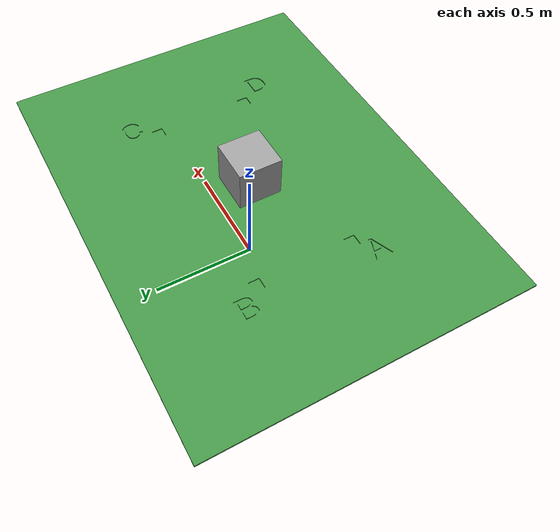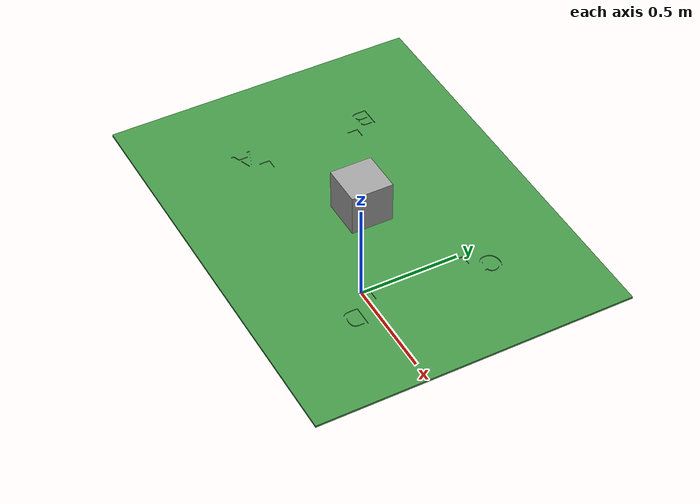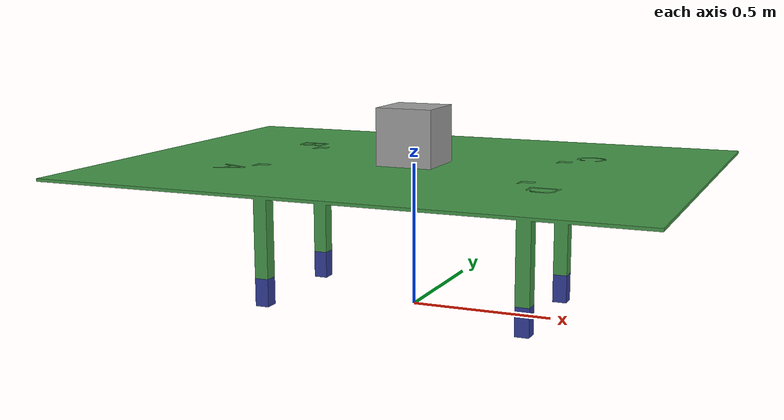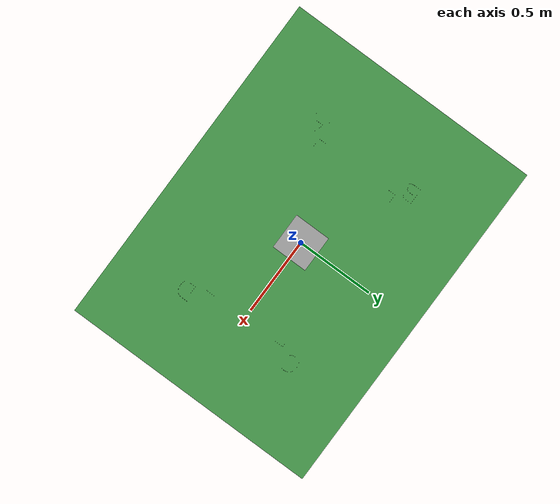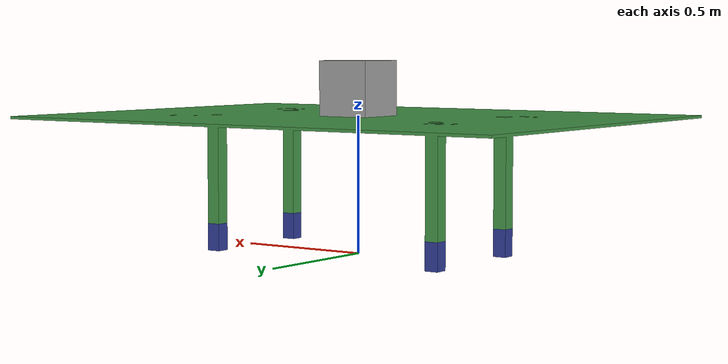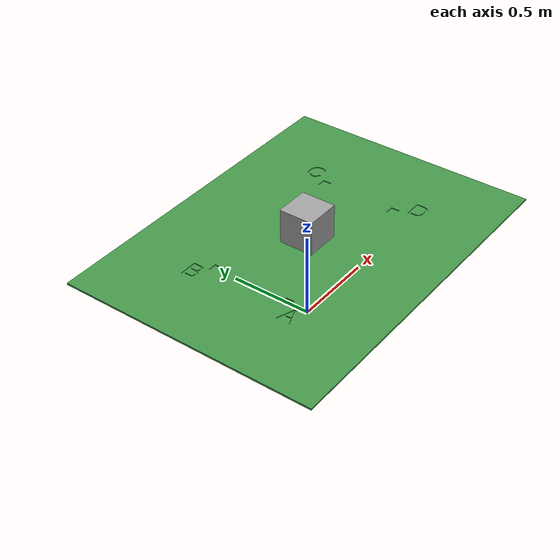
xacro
<?xml version="1.0" ?>
<robot name="loadcell_sim" xmlns:xacro="http://www.ros.org/wiki/xacro">

<xacro:include filename="$(find loadcell_sim_description)/urdf/materials.xacro" />
<xacro:include filename="$(find loadcell_sim_description)/urdf/loadcell_sim.trans" />
<xacro:include filename="$(find loadcell_sim_description)/urdf/loadcell_sim.gazebo" />
<link name="base_link">
  <inertial>
    <origin xyz="4.103019280728379e-05 -1.802265709957231e-05 0.4719023221708341" rpy="0 0 0"/>
    <mass value="265.191721150617"/>
    <inertia ixx="47.111072" iyy="86.63584" izz="130.800671" ixy="-0.013041" iyz="0.000124" ixz="-0.000278"/>
  </inertial>
  <visual>
    <origin xyz="0 0 0" rpy="0 0 0"/>
    <geometry>
      <mesh filename="package://loadcell_sim_description/meshes/base_link.stl" scale="0.001 0.001 0.001"/>
    </geometry>
    <material name="powder_coat_rough_green"/>
  </visual>
  <collision>
    <origin xyz="0 0 0" rpy="0 0 0"/>
    <geometry>
      <mesh filename="package://loadcell_sim_description/meshes/base_link.stl" scale="0.001 0.001 0.001"/>
    </geometry>
  </collision>
</link>

<link name="load_cell_A_1">
  <inertial>
    <origin xyz="0.0 1.1102230246251565e-16 -0.05000000000000002" rpy="0 0 0"/>
    <mass value="1.9624999999999946"/>
    <inertia ixx="0.002044" iyy="0.002044" izz="0.000818" ixy="0.0" iyz="0.0" ixz="0.0"/>
  </inertial>
  <visual>
    <origin xyz="0.475 0.225 -0.1" rpy="0 0 0"/>
    <geometry>
      <mesh filename="package://loadcell_sim_description/meshes/load_cell_A_1.stl" scale="0.001 0.001 0.001"/>
    </geometry>
    <material name="powder_coat_rough_blue"/>
  </visual>
  <collision>
    <origin xyz="0.475 0.225 -0.1" rpy="0 0 0"/>
    <geometry>
      <mesh filename="package://loadcell_sim_description/meshes/load_cell_A_1.stl" scale="0.001 0.001 0.001"/>
    </geometry>
  </collision>
</link>

<link name="load_cell_B_1">
  <inertial>
    <origin xyz="0.0 0.0 -0.05" rpy="0 0 0"/>
    <mass value="1.9625"/>
    <inertia ixx="0.002044" iyy="0.002044" izz="0.000818" ixy="0.0" iyz="0.0" ixz="-0.0"/>
  </inertial>
  <visual>
    <origin xyz="0.475 -0.225 -0.1" rpy="0 0 0"/>
    <geometry>
      <mesh filename="package://loadcell_sim_description/meshes/load_cell_B_1.stl" scale="0.001 0.001 0.001"/>
    </geometry>
    <material name="powder_coat_rough_blue"/>
  </visual>
  <collision>
    <origin xyz="0.475 -0.225 -0.1" rpy="0 0 0"/>
    <geometry>
      <mesh filename="package://loadcell_sim_description/meshes/load_cell_B_1.stl" scale="0.001 0.001 0.001"/>
    </geometry>
  </collision>
</link>

<link name="load_cell_C_1">
  <inertial>
    <origin xyz="0.0 0.0 -0.049999999999999996" rpy="0 0 0"/>
    <mass value="1.9625000000000012"/>
    <inertia ixx="0.002044" iyy="0.002044" izz="0.000818" ixy="-0.0" iyz="0.0" ixz="0.0"/>
  </inertial>
  <visual>
    <origin xyz="-0.475 -0.225 -0.1" rpy="0 0 0"/>
    <geometry>
      <mesh filename="package://loadcell_sim_description/meshes/load_cell_C_1.stl" scale="0.001 0.001 0.001"/>
    </geometry>
    <material name="powder_coat_rough_blue"/>
  </visual>
  <collision>
    <origin xyz="-0.475 -0.225 -0.1" rpy="0 0 0"/>
    <geometry>
      <mesh filename="package://loadcell_sim_description/meshes/load_cell_C_1.stl" scale="0.001 0.001 0.001"/>
    </geometry>
  </collision>
</link>

<link name="load_cell_D_1">
  <inertial>
    <origin xyz="-5.551115123125783e-17 2.7755575615628914e-17 -0.049999999999999996" rpy="0 0 0"/>
    <mass value="1.9625000000000026"/>
    <inertia ixx="0.002044" iyy="0.002044" izz="0.000818" ixy="0.0" iyz="-0.0" ixz="0.0"/>
  </inertial>
  <visual>
    <origin xyz="-0.475 0.225 -0.1" rpy="0 0 0"/>
    <geometry>
      <mesh filename="package://loadcell_sim_description/meshes/load_cell_D_1.stl" scale="0.001 0.001 0.001"/>
    </geometry>
    <material name="powder_coat_rough_blue"/>
  </visual>
  <collision>
    <origin xyz="-0.475 0.225 -0.1" rpy="0 0 0"/>
    <geometry>
      <mesh filename="package://loadcell_sim_description/meshes/load_cell_D_1.stl" scale="0.001 0.001 0.001"/>
    </geometry>
  </collision>
</link>

<link name="load_1">
  <inertial>
    <origin xyz="1.8189894035458566e-17 0.0 0.09999999999999998" rpy="0 0 0"/>
    <mass value="62.79999999999999"/>
    <inertia ixx="0.418667" iyy="0.418667" izz="0.418667" ixy="0.0" iyz="0.0" ixz="0.0"/>
  </inertial>
  <visual>
    <origin xyz="0.0 0.0 -0.5" rpy="0 0 0"/>
    <geometry>
      <mesh filename="package://loadcell_sim_description/meshes/load_1.stl" scale="0.001 0.001 0.001"/>
    </geometry>
    <material name="steel_satin"/>
  </visual>
  <collision>
    <origin xyz="0.0 0.0 -0.5" rpy="0 0 0"/>
    <geometry>
      <mesh filename="package://loadcell_sim_description/meshes/load_1.stl" scale="0.001 0.001 0.001"/>
    </geometry>
  </collision>
</link>

<joint name="Rigid1" type="fixed">
  <origin xyz="-0.475 -0.225 0.1" rpy="0 0 0"/>
  <parent link="base_link"/>
  <child link="load_cell_A_1"/>
</joint>

<joint name="Rigid2" type="fixed">
  <origin xyz="-0.475 0.225 0.1" rpy="0 0 0"/>
  <parent link="base_link"/>
  <child link="load_cell_B_1"/>
</joint>

<joint name="Rigid3" type="fixed">
  <origin xyz="0.475 0.225 0.1" rpy="0 0 0"/>
  <parent link="base_link"/>
  <child link="load_cell_C_1"/>
</joint>

<joint name="Rigid4" type="fixed">
  <origin xyz="0.475 -0.225 0.1" rpy="0 0 0"/>
  <parent link="base_link"/>
  <child link="load_cell_D_1"/>
</joint>

<joint name="Slider5" type="prismatic">
  <origin xyz="0.0 0.0 0.5" rpy="0 0 0"/>
  <parent link="base_link"/>
  <child link="load_1"/>
  <axis xyz="1.0 0.0 0.0"/>
  <limit upper="0.0" lower="0.0" effort="100" velocity="100"/>
</joint>

</robot>

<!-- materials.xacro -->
<robot name="loadcell_sim" xmlns:xacro="http://www.ros.org/wiki/xacro" >

<material name="silver_default">
  <color rgba="0.700 0.700 0.700 1.000"/>
</material>
<material name="powder_coat_rough_blue">
  <color rgba="0.18823529411764706 0.23137254901960785 0.5882352941176471 0.0"/>
</material>
<material name="powder_coat_rough_green">
  <color rgba="0.26666666666666666 0.5882352941176471 0.2823529411764706 0.0"/>
</material>
<material name="steel_satin">
  <color rgba="0.6274509803921569 0.6274509803921569 0.6274509803921569 1.0"/>
</material>

</robot>

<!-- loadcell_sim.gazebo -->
<robot name="loadcell_sim" xmlns:xacro="http://www.ros.org/wiki/xacro" >

<xacro:property name="body_color" value="Gazebo/Silver" />

<gazebo>
  <plugin name="control" filename="libgazebo_ros_control.so"/>
</gazebo>
<gazebo reference="base_link">
  <material>${body_color}</material>
  <mu1>0.2</mu1>
  <mu2>0.2</mu2>
  <selfCollide>true</selfCollide>
  <gravity>true</gravity>
</gazebo>

<gazebo reference="load_cell_A_1">
  <material>${body_color}</material>
  <mu1>0.2</mu1>
  <mu2>0.2</mu2>
  <selfCollide>true</selfCollide>
</gazebo>

<gazebo reference="load_cell_B_1">
  <material>${body_color}</material>
  <mu1>0.2</mu1>
  <mu2>0.2</mu2>
  <selfCollide>true</selfCollide>
</gazebo>

<gazebo reference="load_cell_C_1">
  <material>${body_color}</material>
  <mu1>0.2</mu1>
  <mu2>0.2</mu2>
  <selfCollide>true</selfCollide>
</gazebo>

<gazebo reference="load_cell_D_1">
  <material>${body_color}</material>
  <mu1>0.2</mu1>
  <mu2>0.2</mu2>
  <selfCollide>true</selfCollide>
</gazebo>

<gazebo reference="load_1">
  <material>${body_color}</material>
  <mu1>0.2</mu1>
  <mu2>0.2</mu2>
  <selfCollide>true</selfCollide>
</gazebo>

</robot>
